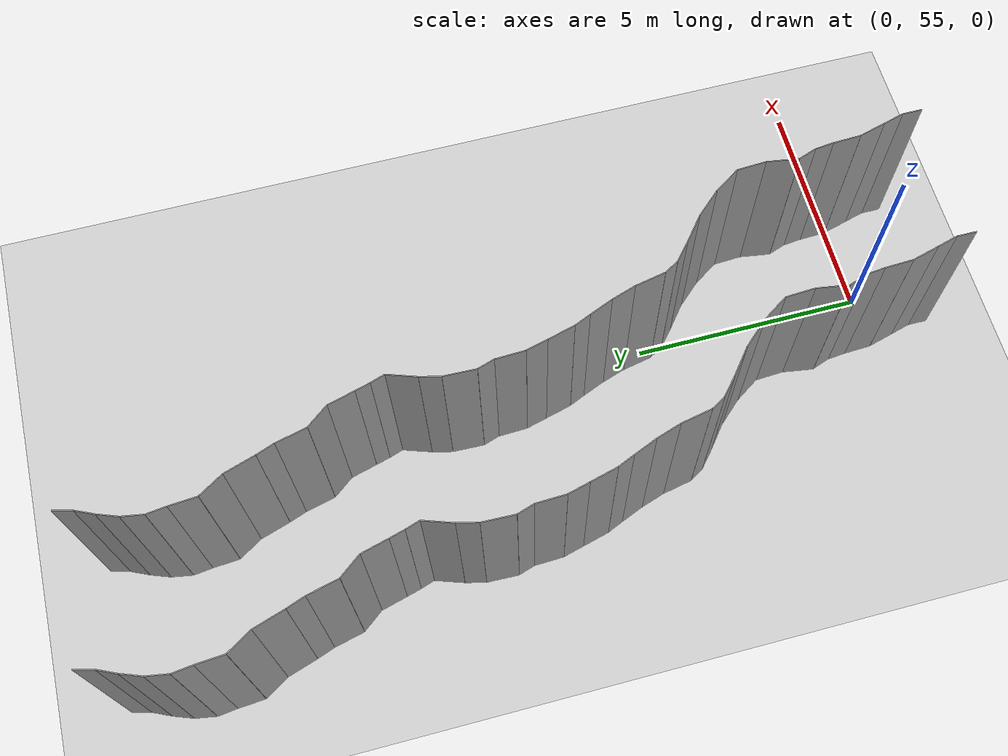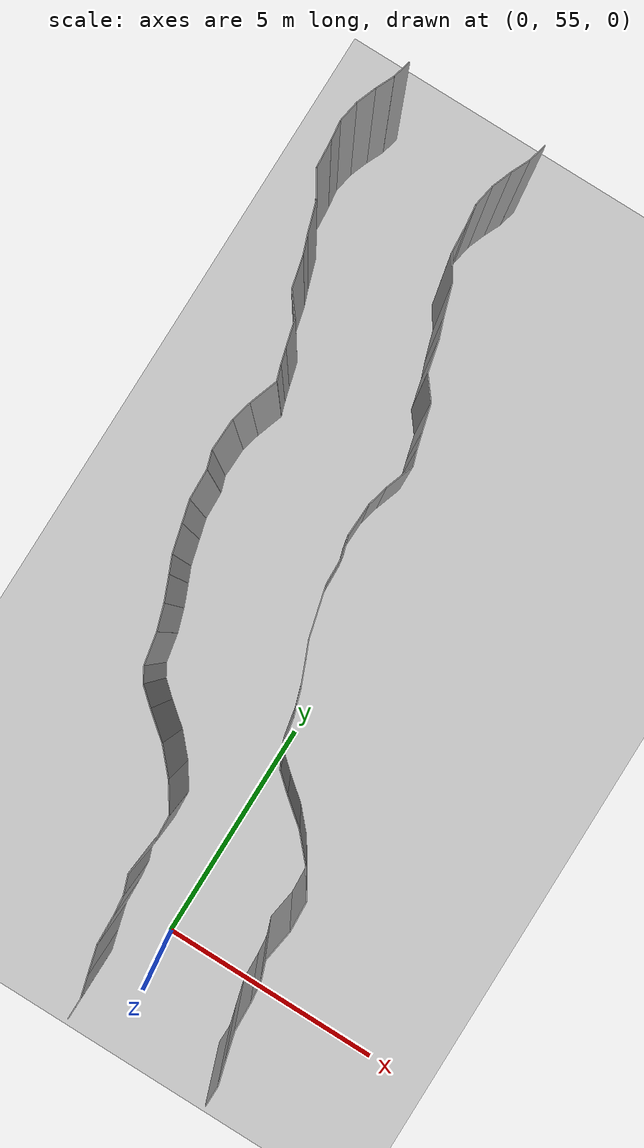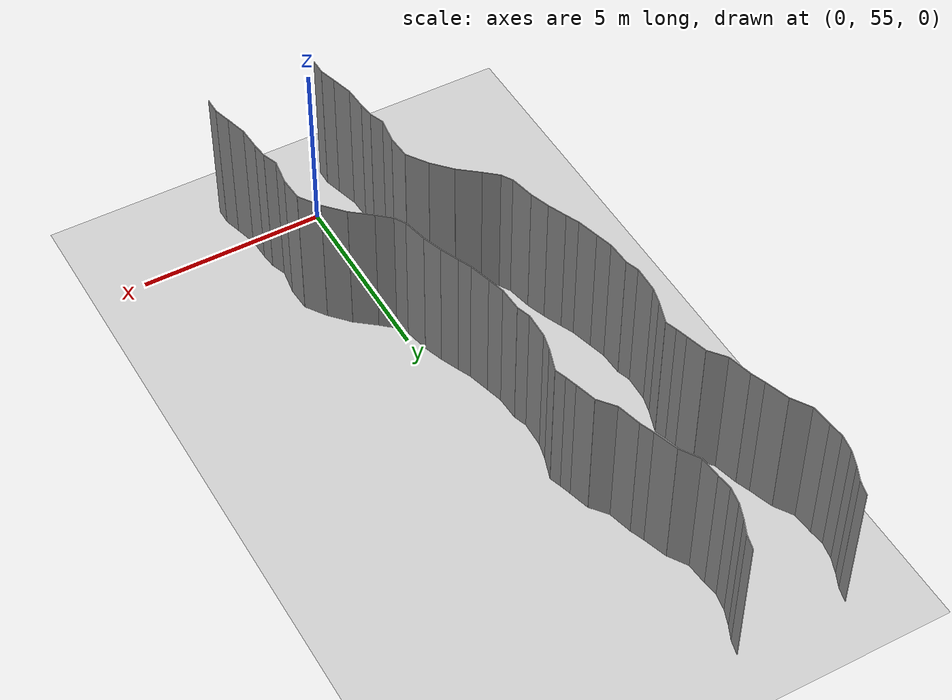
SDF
<sdf version="1.6">
 <world name="default">
  <model name="ground_plane">
   <static>1</static>
   <link name="link">
    <collision name="collision">
     <geometry><plane><normal>0 0 1</normal><size>200 200</size></plane></geometry>
     <surface><friction><ode><mu>100</mu><mu2>50</mu2></ode></friction></surface>
    </collision>
    <visual name="visual">
     <cast_shadows>0</cast_shadows>
     <geometry><plane><normal>0 0 1</normal><size>200 200</size></plane></geometry>
     <material>
      <script><uri>file://media/materials/scripts/gazebo.material</uri><name>Gazebo/Grey</name></script>
     </material>
    </visual>
   </link>
   <pose>0 100 0 0 -0 0</pose>
  </model>
  <model name="wall_224">
   <static>1</static>
   <pose>-0.8488601710361865 53.74915533069031 2 0 0 -0.0033708261607744636</pose>
   <link name="link">
    <collision name="collision"><geometry><box><size>0.02 0.427990519488 4</size></box></geometry></collision>
    <visual name="visual">
     <material>
      <script><name>Gazebo/Grey</name><uri>file://media/materials/scripts/gazebo.material</uri></script>
     </material>
     <geometry><box><size>0.02 0.427990519488 4</size></box></geometry>
    </visual>
   </link>
  </model>
  <model name="wall_225">
   <static>1</static>
   <pose>2.1511398289638137 53.74915533069031 2 0 0 -0.0033708261607744636</pose>
   <link name="link">
    <collision name="collision"><geometry><box><size>0.02 0.427990519488 4</size></box></geometry></collision>
    <visual name="visual">
     <material>
      <script><name>Gazebo/Grey</name><uri>file://media/materials/scripts/gazebo.material</uri></script>
     </material>
     <geometry><box><size>0.02 0.427990519488 4</size></box></geometry>
    </visual>
   </link>
  </model>
  <model name="wall_226">
   <static>1</static>
   <pose>-0.9103711111088513 54.18786944634699 2 0 0 0.2701619031710674</pose>
   <link name="link">
    <collision name="collision"><geometry><box><size>0.02 0.466355946572 4</size></box></geometry></collision>
    <visual name="visual">
     <material>
      <script><name>Gazebo/Grey</name><uri>file://media/materials/scripts/gazebo.material</uri></script>
     </material>
     <geometry><box><size>0.02 0.466355946572 4</size></box></geometry>
    </visual>
   </link>
  </model>
  <model name="wall_227">
   <static>1</static>
   <pose>2.0896288888911485 54.18786944634699 2 0 0 0.2701619031710674</pose>
   <link name="link">
    <collision name="collision"><geometry><box><size>0.02 0.466355946572 4</size></box></geometry></collision>
    <visual name="visual">
     <material>
      <script><name>Gazebo/Grey</name><uri>file://media/materials/scripts/gazebo.material</uri></script>
     </material>
     <geometry><box><size>0.02 0.466355946572 4</size></box></geometry>
    </visual>
   </link>
  </model>
  <model name="wall_228">
   <static>1</static>
   <pose>-1.0484202727576923 54.6972658105692 2 0 0 0.26028491797580194</pose>
   <link name="link">
    <collision name="collision"><geometry><box><size>0.02 0.589198747985 4</size></box></geometry></collision>
    <visual name="visual">
     <material>
      <script><name>Gazebo/Grey</name><uri>file://media/materials/scripts/gazebo.material</uri></script>
     </material>
     <geometry><box><size>0.02 0.589198747985 4</size></box></geometry>
    </visual>
   </link>
  </model>
  <model name="wall_229">
   <static>1</static>
   <pose>1.9515797272423077 54.6972658105692 2 0 0 0.26028491797580194</pose>
   <link name="link">
    <collision name="collision"><geometry><box><size>0.02 0.589198747985 4</size></box></geometry></collision>
    <visual name="visual">
     <material>
      <script><name>Gazebo/Grey</name><uri>file://media/materials/scripts/gazebo.material</uri></script>
     </material>
     <geometry><box><size>0.02 0.589198747985 4</size></box></geometry>
    </visual>
   </link>
  </model>
  <model name="wall_230">
   <static>1</static>
   <pose>-1.1366653484302154 55.284450650713595 2 0 0 0.04106068507005539</pose>
   <link name="link">
    <collision name="collision"><geometry><box><size>0.02 0.605527477033 4</size></box></geometry></collision>
    <visual name="visual">
     <material>
      <script><name>Gazebo/Grey</name><uri>file://media/materials/scripts/gazebo.material</uri></script>
     </material>
     <geometry><box><size>0.02 0.605527477033 4</size></box></geometry>
    </visual>
   </link>
  </model>
  <model name="wall_231">
   <static>1</static>
   <pose>1.8633346515697846 55.284450650713595 2 0 0 0.04106068507005539</pose>
   <link name="link">
    <collision name="collision"><geometry><box><size>0.02 0.605527477033 4</size></box></geometry></collision>
    <visual name="visual">
     <material>
      <script><name>Gazebo/Grey</name><uri>file://media/materials/scripts/gazebo.material</uri></script>
     </material>
     <geometry><box><size>0.02 0.605527477033 4</size></box></geometry>
    </visual>
   </link>
  </model>
  <model name="wall_232">
   <static>1</static>
   <pose>-1.1709298108423558 55.79015527172959 2 0 0 0.10705318927122486</pose>
   <link name="link">
    <collision name="collision"><geometry><box><size>0.02 0.408732024159 4</size></box></geometry></collision>
    <visual name="visual">
     <material>
      <script><name>Gazebo/Grey</name><uri>file://media/materials/scripts/gazebo.material</uri></script>
     </material>
     <geometry><box><size>0.02 0.408732024159 4</size></box></geometry>
    </visual>
   </link>
  </model>
  <model name="wall_233">
   <static>1</static>
   <pose>1.8290701891576442 55.79015527172959 2 0 0 0.10705318927122486</pose>
   <link name="link">
    <collision name="collision"><geometry><box><size>0.02 0.408732024159 4</size></box></geometry></collision>
    <visual name="visual">
     <material>
      <script><name>Gazebo/Grey</name><uri>file://media/materials/scripts/gazebo.material</uri></script>
     </material>
     <geometry><box><size>0.02 0.408732024159 4</size></box></geometry>
    </visual>
   </link>
  </model>
  <model name="wall_234">
   <static>1</static>
   <pose>-1.2624018992497756 56.18882651265532 2 0 0 0.34222183392576955</pose>
   <link name="link">
    <collision name="collision"><geometry><box><size>0.02 0.415016570624 4</size></box></geometry></collision>
    <visual name="visual">
     <material>
      <script><name>Gazebo/Grey</name><uri>file://media/materials/scripts/gazebo.material</uri></script>
     </material>
     <geometry><box><size>0.02 0.415016570624 4</size></box></geometry>
    </visual>
   </link>
  </model>
  <model name="wall_235">
   <static>1</static>
   <pose>1.7375981007502244 56.18882651265532 2 0 0 0.34222183392576955</pose>
   <link name="link">
    <collision name="collision"><geometry><box><size>0.02 0.415016570624 4</size></box></geometry></collision>
    <visual name="visual">
     <material>
      <script><name>Gazebo/Grey</name><uri>file://media/materials/scripts/gazebo.material</uri></script>
     </material>
     <geometry><box><size>0.02 0.415016570624 4</size></box></geometry>
    </visual>
   </link>
  </model>
  <model name="wall_236">
   <static>1</static>
   <pose>-1.2792466942622682 56.72664017361986 2 0 0 -0.15300190480354695</pose>
   <link name="link">
    <collision name="collision"><geometry><box><size>0.02 0.69276990806 4</size></box></geometry></collision>
    <visual name="visual">
     <material>
      <script><name>Gazebo/Grey</name><uri>file://media/materials/scripts/gazebo.material</uri></script>
     </material>
     <geometry><box><size>0.02 0.69276990806 4</size></box></geometry>
    </visual>
   </link>
  </model>
  <model name="wall_237">
   <static>1</static>
   <pose>1.7207533057377318 56.72664017361986 2 0 0 -0.15300190480354695</pose>
   <link name="link">
    <collision name="collision"><geometry><box><size>0.02 0.69276990806 4</size></box></geometry></collision>
    <visual name="visual">
     <material>
      <script><name>Gazebo/Grey</name><uri>file://media/materials/scripts/gazebo.material</uri></script>
     </material>
     <geometry><box><size>0.02 0.69276990806 4</size></box></geometry>
    </visual>
   </link>
  </model>
  <model name="wall_238">
   <static>1</static>
   <pose>-1.243776786436941 57.383462979452716 2 0 0 0.05502224723626713</pose>
   <link name="link">
    <collision name="collision"><geometry><box><size>0.02 0.629921912018 4</size></box></geometry></collision>
    <visual name="visual">
     <material>
      <script><name>Gazebo/Grey</name><uri>file://media/materials/scripts/gazebo.material</uri></script>
     </material>
     <geometry><box><size>0.02 0.629921912018 4</size></box></geometry>
    </visual>
   </link>
  </model>
  <model name="wall_239">
   <static>1</static>
   <pose>1.756223213563059 57.383462979452716 2 0 0 0.05502224723626713</pose>
   <link name="link">
    <collision name="collision"><geometry><box><size>0.02 0.629921912018 4</size></box></geometry></collision>
    <visual name="visual">
     <material>
      <script><name>Gazebo/Grey</name><uri>file://media/materials/scripts/gazebo.material</uri></script>
     </material>
     <geometry><box><size>0.02 0.629921912018 4</size></box></geometry>
    </visual>
   </link>
  </model>
  <model name="wall_240">
   <static>1</static>
   <pose>-1.4438805149958784 57.97425025321971 2 0 0 0.5844377969292165</pose>
   <link name="link">
    <collision name="collision"><geometry><box><size>0.02 0.66257923201 4</size></box></geometry></collision>
    <visual name="visual">
     <material>
      <script><name>Gazebo/Grey</name><uri>file://media/materials/scripts/gazebo.material</uri></script>
     </material>
     <geometry><box><size>0.02 0.66257923201 4</size></box></geometry>
    </visual>
   </link>
  </model>
  <model name="wall_241">
   <static>1</static>
   <pose>1.5561194850041216 57.97425025321971 2 0 0 0.5844377969292165</pose>
   <link name="link">
    <collision name="collision"><geometry><box><size>0.02 0.66257923201 4</size></box></geometry></collision>
    <visual name="visual">
     <material>
      <script><name>Gazebo/Grey</name><uri>file://media/materials/scripts/gazebo.material</uri></script>
     </material>
     <geometry><box><size>0.02 0.66257923201 4</size></box></geometry>
    </visual>
   </link>
  </model>
  <model name="wall_242">
   <static>1</static>
   <pose>-1.857085121871013 58.50533758919613 2 0 0 0.7352299487308496</pose>
   <link name="link">
    <collision name="collision"><geometry><box><size>0.02 0.68704984774 4</size></box></geometry></collision>
    <visual name="visual">
     <material>
      <script><name>Gazebo/Grey</name><uri>file://media/materials/scripts/gazebo.material</uri></script>
     </material>
     <geometry><box><size>0.02 0.68704984774 4</size></box></geometry>
    </visual>
   </link>
  </model>
  <model name="wall_243">
   <static>1</static>
   <pose>1.142914878128987 58.50533758919613 2 0 0 0.7352299487308496</pose>
   <link name="link">
    <collision name="collision"><geometry><box><size>0.02 0.68704984774 4</size></box></geometry></collision>
    <visual name="visual">
     <material>
      <script><name>Gazebo/Grey</name><uri>file://media/materials/scripts/gazebo.material</uri></script>
     </material>
     <geometry><box><size>0.02 0.68704984774 4</size></box></geometry>
    </visual>
   </link>
  </model>
  <model name="wall_244">
   <static>1</static>
   <pose>-2.351426988016842 58.97352458034817 2 0 0 0.8908402895911053</pose>
   <link name="link">
    <collision name="collision"><geometry><box><size>0.02 0.678805937315 4</size></box></geometry></collision>
    <visual name="visual">
     <material>
      <script><name>Gazebo/Grey</name><uri>file://media/materials/scripts/gazebo.material</uri></script>
     </material>
     <geometry><box><size>0.02 0.678805937315 4</size></box></geometry>
    </visual>
   </link>
  </model>
  <model name="wall_245">
   <static>1</static>
   <pose>0.6485730119831579 58.97352458034817 2 0 0 0.8908402895911053</pose>
   <link name="link">
    <collision name="collision"><geometry><box><size>0.02 0.678805937315 4</size></box></geometry></collision>
    <visual name="visual">
     <material>
      <script><name>Gazebo/Grey</name><uri>file://media/materials/scripts/gazebo.material</uri></script>
     </material>
     <geometry><box><size>0.02 0.678805937315 4</size></box></geometry>
    </visual>
   </link>
  </model>
  <model name="wall_246">
   <static>1</static>
   <pose>-2.7932368638520466 59.34340923211053 2 0 0 0.8493352974867376</pose>
   <link name="link">
    <collision name="collision"><geometry><box><size>0.02 0.473841666018 4</size></box></geometry></collision>
    <visual name="visual">
     <material>
      <script><name>Gazebo/Grey</name><uri>file://media/materials/scripts/gazebo.material</uri></script>
     </material>
     <geometry><box><size>0.02 0.473841666018 4</size></box></geometry>
    </visual>
   </link>
  </model>
  <model name="wall_247">
   <static>1</static>
   <pose>0.20676313614795339 59.34340923211053 2 0 0 0.8493352974867376</pose>
   <link name="link">
    <collision name="collision"><geometry><box><size>0.02 0.473841666018 4</size></box></geometry></collision>
    <visual name="visual">
     <material>
      <script><name>Gazebo/Grey</name><uri>file://media/materials/scripts/gazebo.material</uri></script>
     </material>
     <geometry><box><size>0.02 0.473841666018 4</size></box></geometry>
    </visual>
   </link>
  </model>
  <model name="wall_248">
   <static>1</static>
   <pose>-3.0563489482820794 59.647770540951676 2 0 0 0.5228069301121202</pose>
   <link name="link">
    <collision name="collision"><geometry><box><size>0.02 0.341356602088 4</size></box></geometry></collision>
    <visual name="visual">
     <material>
      <script><name>Gazebo/Grey</name><uri>file://media/materials/scripts/gazebo.material</uri></script>
     </material>
     <geometry><box><size>0.02 0.341356602088 4</size></box></geometry>
    </visual>
   </link>
  </model>
  <model name="wall_249">
   <static>1</static>
   <pose>-0.05634894828207937 59.647770540951676 2 0 0 0.5228069301121202</pose>
   <link name="link">
    <collision name="collision"><geometry><box><size>0.02 0.341356602088 4</size></box></geometry></collision>
    <visual name="visual">
     <material>
      <script><name>Gazebo/Grey</name><uri>file://media/materials/scripts/gazebo.material</uri></script>
     </material>
     <geometry><box><size>0.02 0.341356602088 4</size></box></geometry>
    </visual>
   </link>
  </model>
  <model name="wall_250">
   <static>1</static>
   <pose>-3.2077384257528094 60.12547764001121 2 0 0 0.197983888076568</pose>
   <link name="link">
    <collision name="collision"><geometry><box><size>0.02 0.672798688876 4</size></box></geometry></collision>
    <visual name="visual">
     <material>
      <script><name>Gazebo/Grey</name><uri>file://media/materials/scripts/gazebo.material</uri></script>
     </material>
     <geometry><box><size>0.02 0.672798688876 4</size></box></geometry>
    </visual>
   </link>
  </model>
  <model name="wall_251">
   <static>1</static>
   <pose>-0.20773842575280943 60.12547764001121 2 0 0 0.197983888076568</pose>
   <link name="link">
    <collision name="collision"><geometry><box><size>0.02 0.672798688876 4</size></box></geometry></collision>
    <visual name="visual">
     <material>
      <script><name>Gazebo/Grey</name><uri>file://media/materials/scripts/gazebo.material</uri></script>
     </material>
     <geometry><box><size>0.02 0.672798688876 4</size></box></geometry>
    </visual>
   </link>
  </model>
  <model name="wall_252">
   <static>1</static>
   <pose>-3.3596465974557947 60.71695994641427 2 0 0 0.3166602828875437</pose>
   <link name="link">
    <collision name="collision"><geometry><box><size>0.02 0.550688833163 4</size></box></geometry></collision>
    <visual name="visual">
     <material>
      <script><name>Gazebo/Grey</name><uri>file://media/materials/scripts/gazebo.material</uri></script>
     </material>
     <geometry><box><size>0.02 0.550688833163 4</size></box></geometry>
    </visual>
   </link>
  </model>
  <model name="wall_253">
   <static>1</static>
   <pose>-0.35964659745579475 60.71695994641427 2 0 0 0.3166602828875437</pose>
   <link name="link">
    <collision name="collision"><geometry><box><size>0.02 0.550688833163 4</size></box></geometry></collision>
    <visual name="visual">
     <material>
      <script><name>Gazebo/Grey</name><uri>file://media/materials/scripts/gazebo.material</uri></script>
     </material>
     <geometry><box><size>0.02 0.550688833163 4</size></box></geometry>
    </visual>
   </link>
  </model>
  <model name="wall_254">
   <static>1</static>
   <pose>-3.548887218952702 61.229521095756276 2 0 0 0.39123846350755714</pose>
   <link name="link">
    <collision name="collision"><geometry><box><size>0.02 0.542831003768 4</size></box></geometry></collision>
    <visual name="visual">
     <material>
      <script><name>Gazebo/Grey</name><uri>file://media/materials/scripts/gazebo.material</uri></script>
     </material>
     <geometry><box><size>0.02 0.542831003768 4</size></box></geometry>
    </visual>
   </link>
  </model>
  <model name="wall_255">
   <static>1</static>
   <pose>-0.5488872189527019 61.229521095756276 2 0 0 0.39123846350755714</pose>
   <link name="link">
    <collision name="collision"><geometry><box><size>0.02 0.542831003768 4</size></box></geometry></collision>
    <visual name="visual">
     <material>
      <script><name>Gazebo/Grey</name><uri>file://media/materials/scripts/gazebo.material</uri></script>
     </material>
     <geometry><box><size>0.02 0.542831003768 4</size></box></geometry>
    </visual>
   </link>
  </model>
  <model name="wall_256">
   <static>1</static>
   <pose>-3.7272765081598473 61.654099190201755 2 0 0 0.40712163817526814</pose>
   <link name="link">
    <collision name="collision"><geometry><box><size>0.02 0.37826018937 4</size></box></geometry></collision>
    <visual name="visual">
     <material>
      <script><name>Gazebo/Grey</name><uri>file://media/materials/scripts/gazebo.material</uri></script>
     </material>
     <geometry><box><size>0.02 0.37826018937 4</size></box></geometry>
    </visual>
   </link>
  </model>
  <model name="wall_257">
   <static>1</static>
   <pose>-0.7272765081598473 61.654099190201755 2 0 0 0.40712163817526814</pose>
   <link name="link">
    <collision name="collision"><geometry><box><size>0.02 0.37826018937 4</size></box></geometry></collision>
    <visual name="visual">
     <material>
      <script><name>Gazebo/Grey</name><uri>file://media/materials/scripts/gazebo.material</uri></script>
     </material>
     <geometry><box><size>0.02 0.37826018937 4</size></box></geometry>
    </visual>
   </link>
  </model>
  <model name="wall_258">
   <static>1</static>
   <pose>-3.878130369009279 62.12010605809475 2 0 0 0.25423093080713416</pose>
   <link name="link">
    <collision name="collision"><geometry><box><size>0.02 0.604088084675 4</size></box></geometry></collision>
    <visual name="visual">
     <material>
      <script><name>Gazebo/Grey</name><uri>file://media/materials/scripts/gazebo.material</uri></script>
     </material>
     <geometry><box><size>0.02 0.604088084675 4</size></box></geometry>
    </visual>
   </link>
  </model>
  <model name="wall_259">
   <static>1</static>
   <pose>-0.8781303690092792 62.12010605809475 2 0 0 0.25423093080713416</pose>
   <link name="link">
    <collision name="collision"><geometry><box><size>0.02 0.604088084675 4</size></box></geometry></collision>
    <visual name="visual">
     <material>
      <script><name>Gazebo/Grey</name><uri>file://media/materials/scripts/gazebo.material</uri></script>
     </material>
     <geometry><box><size>0.02 0.604088084675 4</size></box></geometry>
    </visual>
   </link>
  </model>
  <model name="wall_260">
   <static>1</static>
   <pose>-4.013576775131492 62.64127707771305 2 0 0 0.25430558108117174</pose>
   <link name="link">
    <collision name="collision"><geometry><box><size>0.02 0.472879809033 4</size></box></geometry></collision>
    <visual name="visual">
     <material>
      <script><name>Gazebo/Grey</name><uri>file://media/materials/scripts/gazebo.material</uri></script>
     </material>
     <geometry><box><size>0.02 0.472879809033 4</size></box></geometry>
    </visual>
   </link>
  </model>
  <model name="wall_261">
   <static>1</static>
   <pose>-1.013576775131492 62.64127707771305 2 0 0 0.25430558108117174</pose>
   <link name="link">
    <collision name="collision"><geometry><box><size>0.02 0.472879809033 4</size></box></geometry></collision>
    <visual name="visual">
     <material>
      <script><name>Gazebo/Grey</name><uri>file://media/materials/scripts/gazebo.material</uri></script>
     </material>
     <geometry><box><size>0.02 0.472879809033 4</size></box></geometry>
    </visual>
   </link>
  </model>
  <model name="wall_262">
   <static>1</static>
   <pose>-4.084716765033181 63.189209957703746 2 0 0 0.0365180782638389</pose>
   <link name="link">
    <collision name="collision"><geometry><box><size>0.02 0.638620379514 4</size></box></geometry></collision>
    <visual name="visual">
     <material>
      <script><name>Gazebo/Grey</name><uri>file://media/materials/scripts/gazebo.material</uri></script>
     </material>
     <geometry><box><size>0.02 0.638620379514 4</size></box></geometry>
    </visual>
   </link>
  </model>
  <model name="wall_263">
   <static>1</static>
   <pose>-1.084716765033181 63.189209957703746 2 0 0 0.0365180782638389</pose>
   <link name="link">
    <collision name="collision"><geometry><box><size>0.02 0.638620379514 4</size></box></geometry></collision>
    <visual name="visual">
     <material>
      <script><name>Gazebo/Grey</name><uri>file://media/materials/scripts/gazebo.material</uri></script>
     </material>
     <geometry><box><size>0.02 0.638620379514 4</size></box></geometry>
    </visual>
   </link>
  </model>
  <model name="wall_264">
   <static>1</static>
   <pose>-4.153830388613406 63.687902834662104 2 0 0 0.3096273650944745</pose>
   <link name="link">
    <collision name="collision"><geometry><box><size>0.02 0.377124482498 4</size></box></geometry></collision>
    <visual name="visual">
     <material>
      <script><name>Gazebo/Grey</name><uri>file://media/materials/scripts/gazebo.material</uri></script>
     </material>
     <geometry><box><size>0.02 0.377124482498 4</size></box></geometry>
    </visual>
   </link>
  </model>
  <model name="wall_265">
   <static>1</static>
   <pose>-1.1538303886134056 63.687902834662104 2 0 0 0.3096273650944745</pose>
   <link name="link">
    <collision name="collision"><geometry><box><size>0.02 0.377124482498 4</size></box></geometry></collision>
    <visual name="visual">
     <material>
      <script><name>Gazebo/Grey</name><uri>file://media/materials/scripts/gazebo.material</uri></script>
     </material>
     <geometry><box><size>0.02 0.377124482498 4</size></box></geometry>
    </visual>
   </link>
  </model>
  <model name="wall_266">
   <static>1</static>
   <pose>-4.20003033430652 64.21253325024384 2 0 0 -0.03261028576718913</pose>
   <link name="link">
    <collision name="collision"><geometry><box><size>0.02 0.690436764885 4</size></box></geometry></collision>
    <visual name="visual">
     <material>
      <script><name>Gazebo/Grey</name><uri>file://media/materials/scripts/gazebo.material</uri></script>
     </material>
     <geometry><box><size>0.02 0.690436764885 4</size></box></geometry>
    </visual>
   </link>
  </model>
  <model name="wall_267">
   <static>1</static>
   <pose>-1.2000303343065202 64.21253325024384 2 0 0 -0.03261028576718913</pose>
   <link name="link">
    <collision name="collision"><geometry><box><size>0.02 0.690436764885 4</size></box></geometry></collision>
    <visual name="visual">
     <material>
      <script><name>Gazebo/Grey</name><uri>file://media/materials/scripts/gazebo.material</uri></script>
     </material>
     <geometry><box><size>0.02 0.690436764885 4</size></box></geometry>
    </visual>
   </link>
  </model>
  <model name="wall_268">
   <static>1</static>
   <pose>-4.135011074067424 64.77469855596358 2 0 0 -0.24272760284093678</pose>
   <link name="link">
    <collision name="collision"><geometry><box><size>0.02 0.447375287237 4</size></box></geometry></collision>
    <visual name="visual">
     <material>
      <script><name>Gazebo/Grey</name><uri>file://media/materials/scripts/gazebo.material</uri></script>
     </material>
     <geometry><box><size>0.02 0.447375287237 4</size></box></geometry>
    </visual>
   </link>
  </model>
  <model name="wall_269">
   <static>1</static>
   <pose>-1.1350110740674237 64.77469855596358 2 0 0 -0.24272760284093678</pose>
   <link name="link">
    <collision name="collision"><geometry><box><size>0.02 0.447375287237 4</size></box></geometry></collision>
    <visual name="visual">
     <material>
      <script><name>Gazebo/Grey</name><uri>file://media/materials/scripts/gazebo.material</uri></script>
     </material>
     <geometry><box><size>0.02 0.447375287237 4</size></box></geometry>
    </visual>
   </link>
  </model>
  <model name="wall_270">
   <static>1</static>
   <pose>-3.9764359329422954 65.29547506211189 2 0 0 -0.3323714984538109</pose>
   <link name="link">
    <collision name="collision"><geometry><box><size>0.02 0.642452739358 4</size></box></geometry></collision>
    <visual name="visual">
     <material>
      <script><name>Gazebo/Grey</name><uri>file://media/materials/scripts/gazebo.material</uri></script>
     </material>
     <geometry><box><size>0.02 0.642452739358 4</size></box></geometry>
    </visual>
   </link>
  </model>
  <model name="wall_271">
   <static>1</static>
   <pose>-0.9764359329422954 65.29547506211189 2 0 0 -0.3323714984538109</pose>
   <link name="link">
    <collision name="collision"><geometry><box><size>0.02 0.642452739358 4</size></box></geometry></collision>
    <visual name="visual">
     <material>
      <script><name>Gazebo/Grey</name><uri>file://media/materials/scripts/gazebo.material</uri></script>
     </material>
     <geometry><box><size>0.02 0.642452739358 4</size></box></geometry>
    </visual>
   </link>
  </model>
  <model name="wall_272">
   <static>1</static>
   <pose>-3.9220546833201753 65.75109772695828 2 0 0 0.32039637076193256</pose>
   <link name="link">
    <collision name="collision"><geometry><box><size>0.02 0.320250588828 4</size></box></geometry></collision>
    <visual name="visual">
     <material>
      <script><name>Gazebo/Grey</name><uri>file://media/materials/scripts/gazebo.material</uri></script>
     </material>
     <geometry><box><size>0.02 0.320250588828 4</size></box></geometry>
    </visual>
   </link>
  </model>
  <model name="wall_273">
   <static>1</static>
   <pose>-0.9220546833201753 65.75109772695828 2 0 0 0.32039637076193256</pose>
   <link name="link">
    <collision name="collision"><geometry><box><size>0.02 0.320250588828 4</size></box></geometry></collision>
    <visual name="visual">
     <material>
      <script><name>Gazebo/Grey</name><uri>file://media/materials/scripts/gazebo.material</uri></script>
     </material>
     <geometry><box><size>0.02 0.320250588828 4</size></box></geometry>
    </visual>
   </link>
  </model>
  <model name="wall_274">
   <static>1</static>
   <pose>-4.016321935143481 66.0608047987726 2 0 0 0.27108181950289256</pose>
   <link name="link">
    <collision name="collision"><geometry><box><size>0.02 0.32741760544 4</size></box></geometry></collision>
    <visual name="visual">
     <material>
      <script><name>Gazebo/Grey</name><uri>file://media/materials/scripts/gazebo.material</uri></script>
     </material>
     <geometry><box><size>0.02 0.32741760544 4</size></box></geometry>
    </visual>
   </link>
  </model>
  <model name="wall_275">
   <static>1</static>
   <pose>-1.0163219351434813 66.0608047987726 2 0 0 0.27108181950289256</pose>
   <link name="link">
    <collision name="collision"><geometry><box><size>0.02 0.32741760544 4</size></box></geometry></collision>
    <visual name="visual">
     <material>
      <script><name>Gazebo/Grey</name><uri>file://media/materials/scripts/gazebo.material</uri></script>
     </material>
     <geometry><box><size>0.02 0.32741760544 4</size></box></geometry>
    </visual>
   </link>
  </model>
  <model name="wall_276">
   <static>1</static>
   <pose>-4.13614286345582 66.5025455814108 2 0 0 0.26141709975110283</pose>
   <link name="link">
    <collision name="collision"><geometry><box><size>0.02 0.587998080603 4</size></box></geometry></collision>
    <visual name="visual">
     <material>
      <script><name>Gazebo/Grey</name><uri>file://media/materials/scripts/gazebo.material</uri></script>
     </material>
     <geometry><box><size>0.02 0.587998080603 4</size></box></geometry>
    </visual>
   </link>
  </model>
  <model name="wall_277">
   <static>1</static>
   <pose>-1.1361428634558202 66.5025455814108 2 0 0 0.26141709975110283</pose>
   <link name="link">
    <collision name="collision"><geometry><box><size>0.02 0.587998080603 4</size></box></geometry></collision>
    <visual name="visual">
     <material>
      <script><name>Gazebo/Grey</name><uri>file://media/materials/scripts/gazebo.material</uri></script>
     </material>
     <geometry><box><size>0.02 0.587998080603 4</size></box></geometry>
    </visual>
   </link>
  </model>
  <model name="wall_278">
   <static>1</static>
   <pose>-4.385196402622582 67.00693173053682 2 0 0 0.665736692927034</pose>
   <link name="link">
    <collision name="collision"><geometry><box><size>0.02 0.560423308148 4</size></box></geometry></collision>
    <visual name="visual">
     <material>
      <script><name>Gazebo/Grey</name><uri>file://media/materials/scripts/gazebo.material</uri></script>
     </material>
     <geometry><box><size>0.02 0.560423308148 4</size></box></geometry>
    </visual>
   </link>
  </model>
  <model name="wall_279">
   <static>1</static>
   <pose>-1.385196402622582 67.00693173053682 2 0 0 0.665736692927034</pose>
   <link name="link">
    <collision name="collision"><geometry><box><size>0.02 0.560423308148 4</size></box></geometry></collision>
    <visual name="visual">
     <material>
      <script><name>Gazebo/Grey</name><uri>file://media/materials/scripts/gazebo.material</uri></script>
     </material>
     <geometry><box><size>0.02 0.560423308148 4</size></box></geometry>
    </visual>
   </link>
  </model>
  <model name="wall_280">
   <static>1</static>
   <pose>-4.637969856276634 67.5538854006596 2 0 0 0.23937830246724223</pose>
   <link name="link">
    <collision name="collision"><geometry><box><size>0.02 0.672326726799 4</size></box></geometry></collision>
    <visual name="visual">
     <material>
      <script><name>Gazebo/Grey</name><uri>file://media/materials/scripts/gazebo.material</uri></script>
     </material>
     <geometry><box><size>0.02 0.672326726799 4</size></box></geometry>
    </visual>
   </link>
  </model>
  <model name="wall_281">
   <static>1</static>
   <pose>-1.6379698562766336 67.5538854006596 2 0 0 0.23937830246724223</pose>
   <link name="link">
    <collision name="collision"><geometry><box><size>0.02 0.672326726799 4</size></box></geometry></collision>
    <visual name="visual">
     <material>
      <script><name>Gazebo/Grey</name><uri>file://media/materials/scripts/gazebo.material</uri></script>
     </material>
     <geometry><box><size>0.02 0.672326726799 4</size></box></geometry>
    </visual>
   </link>
  </model>
  <model name="wall_282">
   <static>1</static>
   <pose>-4.78760114738591 68.07042742756656 2 0 0 0.3527150116036922</pose>
   <link name="link">
    <collision name="collision"><geometry><box><size>0.02 0.404851710444 4</size></box></geometry></collision>
    <visual name="visual">
     <material>
      <script><name>Gazebo/Grey</name><uri>file://media/materials/scripts/gazebo.material</uri></script>
     </material>
     <geometry><box><size>0.02 0.404851710444 4</size></box></geometry>
    </visual>
   </link>
  </model>
  <model name="wall_283">
   <static>1</static>
   <pose>-1.7876011473859101 68.07042742756656 2 0 0 0.3527150116036922</pose>
   <link name="link">
    <collision name="collision"><geometry><box><size>0.02 0.404851710444 4</size></box></geometry></collision>
    <visual name="visual">
     <material>
      <script><name>Gazebo/Grey</name><uri>file://media/materials/scripts/gazebo.material</uri></script>
     </material>
     <geometry><box><size>0.02 0.404851710444 4</size></box></geometry>
    </visual>
   </link>
  </model>
  <model name="wall_284">
   <static>1</static>
   <pose>-4.962543834580387 68.58657971980907 2 0 0 0.31146810925224494</pose>
   <link name="link">
    <collision name="collision"><geometry><box><size>0.02 0.685352177952 4</size></box></geometry></collision>
    <visual name="visual">
     <material>
      <script><name>Gazebo/Grey</name><uri>file://media/materials/scripts/gazebo.material</uri></script>
     </material>
     <geometry><box><size>0.02 0.685352177952 4</size></box></geometry>
    </visual>
   </link>
  </model>
  <model name="wall_285">
   <static>1</static>
   <pose>-1.9625438345803872 68.58657971980907 2 0 0 0.31146810925224494</pose>
   <link name="link">
    <collision name="collision"><geometry><box><size>0.02 0.685352177952 4</size></box></geometry></collision>
    <visual name="visual">
     <material>
      <script><name>Gazebo/Grey</name><uri>file://media/materials/scripts/gazebo.material</uri></script>
     </material>
     <geometry><box><size>0.02 0.685352177952 4</size></box></geometry>
    </visual>
   </link>
  </model>
  <model name="wall_286">
   <static>1</static>
   <pose>-5.225497828655989 69.16394344357475 2 0 0 0.5613257550582229</pose>
   <link name="link">
    <collision name="collision"><geometry><box><size>0.02 0.593409864271 4</size></box></geometry></collision>
    <visual name="visual">
     <material>
      <script><name>Gazebo/Grey</name><uri>file://media/materials/scripts/gazebo.material</uri></script>
     </material>
     <geometry><box><size>0.02 0.593409864271 4</size></box></geometry>
    </visual>
   </link>
  </model>
  <model name="wall_287">
   <static>1</static>
   <pose>-2.225497828655989 69.16394344357475 2 0 0 0.5613257550582229</pose>
   <link name="link">
    <collision name="collision"><geometry><box><size>0.02 0.593409864271 4</size></box></geometry></collision>
    <visual name="visual">
     <material>
      <script><name>Gazebo/Grey</name><uri>file://media/materials/scripts/gazebo.material</uri></script>
     </material>
     <geometry><box><size>0.02 0.593409864271 4</size></box></geometry>
    </visual>
   </link>
  </model>
  <model name="wall_288">
   <static>1</static>
   <pose>-5.405294663883998 69.70665607728542 2 0 0 0.07483548384806384</pose>
   <link name="link">
    <collision name="collision"><geometry><box><size>0.02 0.584710589355 4</size></box></geometry></collision>
    <visual name="visual">
     <material>
      <script><name>Gazebo/Grey</name><uri>file://media/materials/scripts/gazebo.material</uri></script>
     </material>
     <geometry><box><size>0.02 0.584710589355 4</size></box></geometry>
    </visual>
   </link>
  </model>
  <model name="wall_289">
   <static>1</static>
   <pose>-2.405294663883998 69.70665607728542 2 0 0 0.07483548384806384</pose>
   <link name="link">
    <collision name="collision"><geometry><box><size>0.02 0.584710589355 4</size></box></geometry></collision>
    <visual name="visual">
     <material>
      <script><name>Gazebo/Grey</name><uri>file://media/materials/scripts/gazebo.material</uri></script>
     </material>
     <geometry><box><size>0.02 0.584710589355 4</size></box></geometry>
    </visual>
   </link>
  </model>
  <model name="wall_290">
   <static>1</static>
   <pose>-5.452434976100226 70.20482446024742 2 0 0 0.12174888492814868</pose>
   <link name="link">
    <collision name="collision"><geometry><box><size>0.02 0.416344589208 4</size></box></geometry></collision>
    <visual name="visual">
     <material>
      <script><name>Gazebo/Grey</name><uri>file://media/materials/scripts/gazebo.material</uri></script>
     </material>
     <geometry><box><size>0.02 0.416344589208 4</size></box></geometry>
    </visual>
   </link>
  </model>
  <model name="wall_291">
   <static>1</static>
   <pose>-2.4524349761002258 70.20482446024742 2 0 0 0.12174888492814868</pose>
   <link name="link">
    <collision name="collision"><geometry><box><size>0.02 0.416344589208 4</size></box></geometry></collision>
    <visual name="visual">
     <material>
      <script><name>Gazebo/Grey</name><uri>file://media/materials/scripts/gazebo.material</uri></script>
     </material>
     <geometry><box><size>0.02 0.416344589208 4</size></box></geometry>
    </visual>
   </link>
  </model>
  <model name="wall_292">
   <static>1</static>
   <pose>-5.438315003196812 70.63813418451265 2 0 0 -0.17210442404981063</pose>
   <link name="link">
    <collision name="collision"><geometry><box><size>0.02 0.460154816683 4</size></box></geometry></collision>
    <visual name="visual">
     <material>
      <script><name>Gazebo/Grey</name><uri>file://media/materials/scripts/gazebo.material</uri></script>
     </material>
     <geometry><box><size>0.02 0.460154816683 4</size></box></geometry>
    </visual>
   </link>
  </model>
  <model name="wall_293">
   <static>1</static>
   <pose>-2.438315003196812 70.63813418451265 2 0 0 -0.17210442404981063</pose>
   <link name="link">
    <collision name="collision"><geometry><box><size>0.02 0.460154816683 4</size></box></geometry></collision>
    <visual name="visual">
     <material>
      <script><name>Gazebo/Grey</name><uri>file://media/materials/scripts/gazebo.material</uri></script>
     </material>
     <geometry><box><size>0.02 0.460154816683 4</size></box></geometry>
    </visual>
   </link>
  </model>
  <model name="wall_294">
   <static>1</static>
   <pose>-5.3202442066691145 71.07391520156924 2 0 0 -0.35984003406022946</pose>
   <link name="link">
    <collision name="collision"><geometry><box><size>0.02 0.446822882084 4</size></box></geometry></collision>
    <visual name="visual">
     <material>
      <script><name>Gazebo/Grey</name><uri>file://media/materials/scripts/gazebo.material</uri></script>
     </material>
     <geometry><box><size>0.02 0.446822882084 4</size></box></geometry>
    </visual>
   </link>
  </model>
  <model name="wall_295">
   <static>1</static>
   <pose>-2.3202442066691145 71.07391520156924 2 0 0 -0.35984003406022946</pose>
   <link name="link">
    <collision name="collision"><geometry><box><size>0.02 0.446822882084 4</size></box></geometry></collision>
    <visual name="visual">
     <material>
      <script><name>Gazebo/Grey</name><uri>file://media/materials/scripts/gazebo.material</uri></script>
     </material>
     <geometry><box><size>0.02 0.446822882084 4</size></box></geometry>
    </visual>
   </link>
  </model>
  <model name="wall_296">
   <static>1</static>
   <pose>-5.1536988980982095 71.47230552519427 2 0 0 -0.4346402165800366</pose>
   <link name="link">
    <collision name="collision"><geometry><box><size>0.02 0.417382956669 4</size></box></geometry></collision>
    <visual name="visual">
     <material>
      <script><name>Gazebo/Grey</name><uri>file://media/materials/scripts/gazebo.material</uri></script>
     </material>
     <geometry><box><size>0.02 0.417382956669 4</size></box></geometry>
    </visual>
   </link>
  </model>
  <model name="wall_297">
   <static>1</static>
   <pose>-2.1536988980982095 71.47230552519427 2 0 0 -0.4346402165800366</pose>
   <link name="link">
    <collision name="collision"><geometry><box><size>0.02 0.417382956669 4</size></box></geometry></collision>
    <visual name="visual">
     <material>
      <script><name>Gazebo/Grey</name><uri>file://media/materials/scripts/gazebo.material</uri></script>
     </material>
     <geometry><box><size>0.02 0.417382956669 4</size></box></geometry>
    </visual>
   </link>
  </model>
  <model name="wall_298">
   <static>1</static>
   <pose>-5.015348840825639 71.85602014314797 2 0 0 -0.2539941259363654</pose>
   <link name="link">
    <collision name="collision"><geometry><box><size>0.02 0.401743193091 4</size></box></geometry></collision>
    <visual name="visual">
     <material>
      <script><name>Gazebo/Grey</name><uri>file://media/materials/scripts/gazebo.material</uri></script>
     </material>
     <geometry><box><size>0.02 0.401743193091 4</size></box></geometry>
    </visual>
   </link>
  </model>
  <model name="wall_299">
   <static>1</static>
   <pose>-2.015348840825639 71.85602014314797 2 0 0 -0.2539941259363654</pose>
   <link name="link">
    <collision name="collision"><geometry><box><size>0.02 0.401743193091 4</size></box></geometry></collision>
    <visual name="visual">
     <material>
      <script><name>Gazebo/Grey</name><uri>file://media/materials/scripts/gazebo.material</uri></script>
     </material>
     <geometry><box><size>0.02 0.401743193091 4</size></box></geometry>
    </visual>
   </link>
  </model>
 </world>
</sdf>
